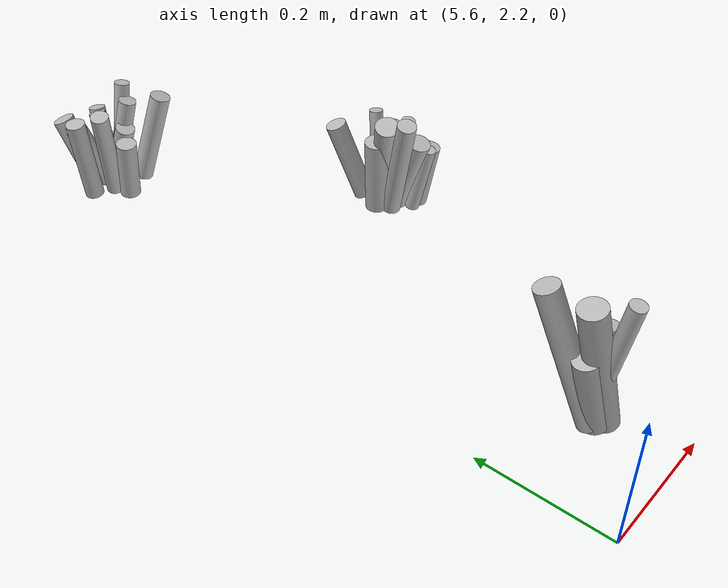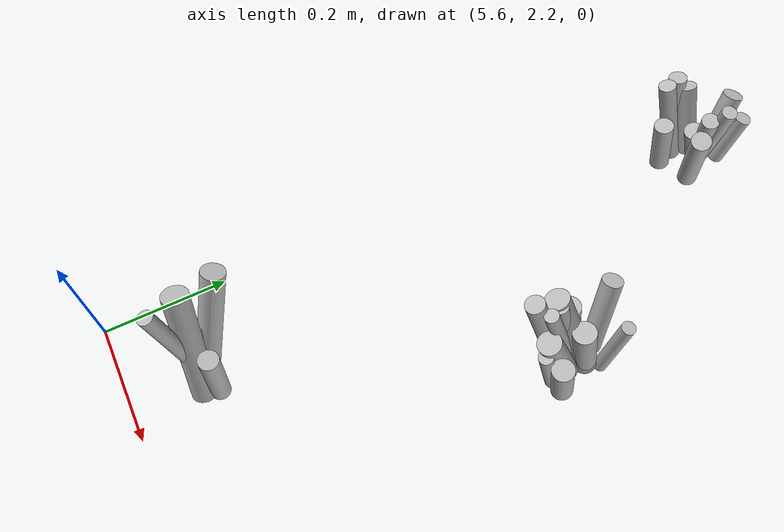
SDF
<sdf version="1.6">
 <world name="default">
  <model name="tussocks">
   <static>true</static>
   <link name="tuft14_2">
    <pose>5.7411 2.3200 0.1001 0 0.2592 2.6650</pose>
    <visual name="tuft14_2_v">
     <geometry><cylinder><radius>0.0198</radius><length>0.2176</length></cylinder></geometry>
     <material>
      <script>
       <uri>model://bushfire/materials/scripts</uri>
       <uri>model://bushfire/materials/textures</uri>
       <name>Bushfire/Tussock</name>
      </script>
     </material>
    </visual>
   </link>
   <link name="tuft14_3">
    <pose>5.7280 2.3554 0.1056 0 0.3630 2.0406</pose>
    <visual name="tuft14_3_v">
     <geometry><cylinder><radius>0.0180</radius><length>0.2295</length></cylinder></geometry>
     <material>
      <script>
       <uri>model://bushfire/materials/scripts</uri>
       <uri>model://bushfire/materials/textures</uri>
       <name>Bushfire/Tussock</name>
      </script>
     </material>
    </visual>
   </link>
   <link name="tuft14_4">
    <pose>5.7809 2.3336 0.0623 0 0.1174 0.4705</pose>
    <visual name="tuft14_4_v">
     <geometry><cylinder><radius>0.0155</radius><length>0.1354</length></cylinder></geometry>
     <material>
      <script>
       <uri>model://bushfire/materials/scripts</uri>
       <uri>model://bushfire/materials/textures</uri>
       <name>Bushfire/Tussock</name>
      </script>
     </material>
    </visual>
   </link>
   <link name="tuft14_5">
    <pose>5.7449 2.3075 0.1059 0 0.1736 4.4198</pose>
    <visual name="tuft14_5_v">
     <geometry><cylinder><radius>0.0118</radius><length>0.2302</length></cylinder></geometry>
     <material>
      <script>
       <uri>model://bushfire/materials/scripts</uri>
       <uri>model://bushfire/materials/textures</uri>
       <name>Bushfire/Tussock</name>
      </script>
     </material>
    </visual>
   </link>
   <link name="tuft14_10">
    <pose>5.7372 2.3224 0.0593 0 0.2665 2.6365</pose>
    <visual name="tuft14_10_v">
     <geometry><cylinder><radius>0.0189</radius><length>0.1290</length></cylinder></geometry>
     <material>
      <script>
       <uri>model://bushfire/materials/scripts</uri>
       <uri>model://bushfire/materials/textures</uri>
       <name>Bushfire/Tussock</name>
      </script>
     </material>
    </visual>
   </link>
   <link name="tuft110_0">
    <pose>5.7527 3.2222 0.0673 0 0.2383 5.4271</pose>
    <visual name="tuft110_0_v">
     <geometry><cylinder><radius>0.0144</radius><length>0.1463</length></cylinder></geometry>
     <material>
      <script>
       <uri>model://bushfire/materials/scripts</uri>
       <uri>model://bushfire/materials/textures</uri>
       <name>Bushfire/Tussock</name>
      </script>
     </material>
    </visual>
   </link>
   <link name="tuft110_1">
    <pose>5.6957 3.2328 0.0595 0 0.3846 3.1448</pose>
    <visual name="tuft110_1_v">
     <geometry><cylinder><radius>0.0169</radius><length>0.1294</length></cylinder></geometry>
     <material>
      <script>
       <uri>model://bushfire/materials/scripts</uri>
       <uri>model://bushfire/materials/textures</uri>
       <name>Bushfire/Tussock</name>
      </script>
     </material>
    </visual>
   </link>
   <link name="tuft110_2">
    <pose>5.7581 3.2811 0.0471 0 0.2186 1.2731</pose>
    <visual name="tuft110_2_v">
     <geometry><cylinder><radius>0.0137</radius><length>0.1024</length></cylinder></geometry>
     <material>
      <script>
       <uri>model://bushfire/materials/scripts</uri>
       <uri>model://bushfire/materials/textures</uri>
       <name>Bushfire/Foliage2</name>
      </script>
     </material>
    </visual>
   </link>
   <link name="tuft110_3">
    <pose>5.7453 3.2558 0.0492 0 0.3368 1.4867</pose>
    <visual name="tuft110_3_v">
     <geometry><cylinder><radius>0.0140</radius><length>0.1069</length></cylinder></geometry>
     <material>
      <script>
       <uri>model://bushfire/materials/scripts</uri>
       <uri>model://bushfire/materials/textures</uri>
       <name>Bushfire/Foliage2</name>
      </script>
     </material>
    </visual>
   </link>
   <link name="tuft110_4">
    <pose>5.7140 3.2982 0.0444 0 0.3822 1.9938</pose>
    <visual name="tuft110_4_v">
     <geometry><cylinder><radius>0.0178</radius><length>0.0966</length></cylinder></geometry>
     <material>
      <script>
       <uri>model://bushfire/materials/scripts</uri>
       <uri>model://bushfire/materials/textures</uri>
       <name>Bushfire/Foliage2</name>
      </script>
     </material>
    </visual>
   </link>
   <link name="tuft110_5">
    <pose>5.7613 3.2322 0.0769 0 0.1660 6.2417</pose>
    <visual name="tuft110_5_v">
     <geometry><cylinder><radius>0.0127</radius><length>0.1671</length></cylinder></geometry>
     <material>
      <script>
       <uri>model://bushfire/materials/scripts</uri>
       <uri>model://bushfire/materials/textures</uri>
       <name>Bushfire/Tussock</name>
      </script>
     </material>
    </visual>
   </link>
   <link name="tuft110_6">
    <pose>5.6705 3.2189 0.0661 0 0.1321 3.3327</pose>
    <visual name="tuft110_6_v">
     <geometry><cylinder><radius>0.0154</radius><length>0.1436</length></cylinder></geometry>
     <material>
      <script>
       <uri>model://bushfire/materials/scripts</uri>
       <uri>model://bushfire/materials/textures</uri>
       <name>Bushfire/Tussock</name>
      </script>
     </material>
    </visual>
   </link>
   <link name="tuft110_7">
    <pose>5.7444 3.2174 0.0481 0 0.3218 4.7830</pose>
    <visual name="tuft110_7_v">
     <geometry><cylinder><radius>0.0160</radius><length>0.1045</length></cylinder></geometry>
     <material>
      <script>
       <uri>model://bushfire/materials/scripts</uri>
       <uri>model://bushfire/materials/textures</uri>
       <name>Bushfire/Foliage2</name>
      </script>
     </material>
    </visual>
   </link>
   <link name="tuft110_8">
    <pose>5.7166 3.1688 0.0471 0 0.1317 4.3180</pose>
    <visual name="tuft110_8_v">
     <geometry><cylinder><radius>0.0166</radius><length>0.1024</length></cylinder></geometry>
     <material>
      <script>
       <uri>model://bushfire/materials/scripts</uri>
       <uri>model://bushfire/materials/textures</uri>
       <name>Bushfire/Tussock</name>
      </script>
     </material>
    </visual>
   </link>
   <link name="tuft110_9">
    <pose>5.7829 3.1818 0.0729 0 0.2880 5.3705</pose>
    <visual name="tuft110_9_v">
     <geometry><cylinder><radius>0.0165</radius><length>0.1584</length></cylinder></geometry>
     <material>
      <script>
       <uri>model://bushfire/materials/scripts</uri>
       <uri>model://bushfire/materials/textures</uri>
       <name>Bushfire/Foliage2</name>
      </script>
     </material>
    </visual>
   </link>
   <link name="tuft110_10">
    <pose>5.6960 3.1906 0.0765 0 0.2545 3.8717</pose>
    <visual name="tuft110_10_v">
     <geometry><cylinder><radius>0.0145</radius><length>0.1662</length></cylinder></geometry>
     <material>
      <script>
       <uri>model://bushfire/materials/scripts</uri>
       <uri>model://bushfire/materials/textures</uri>
       <name>Bushfire/Tussock</name>
      </script>
     </material>
    </visual>
   </link>
   <link name="tuft146_0">
    <pose>5.9537 2.8901 0.0642 0 0.3498 2.2709</pose>
    <visual name="tuft146_0_v">
     <geometry><cylinder><radius>0.0167</radius><length>0.1396</length></cylinder></geometry>
     <material>
      <script>
       <uri>model://bushfire/materials/scripts</uri>
       <uri>model://bushfire/materials/textures</uri>
       <name>Bushfire/Tussock</name>
      </script>
     </material>
    </visual>
   </link>
   <link name="tuft146_1">
    <pose>5.9930 2.7763 0.0552 0 0.2151 4.7660</pose>
    <visual name="tuft146_1_v">
     <geometry><cylinder><radius>0.0117</radius><length>0.1201</length></cylinder></geometry>
     <material>
      <script>
       <uri>model://bushfire/materials/scripts</uri>
       <uri>model://bushfire/materials/textures</uri>
       <name>Bushfire/Foliage2</name>
      </script>
     </material>
    </visual>
   </link>
   <link name="tuft146_2">
    <pose>5.9882 2.8406 0.0559 0 0.1456 4.5867</pose>
    <visual name="tuft146_2_v">
     <geometry><cylinder><radius>0.0184</radius><length>0.1214</length></cylinder></geometry>
     <material>
      <script>
       <uri>model://bushfire/materials/scripts</uri>
       <uri>model://bushfire/materials/textures</uri>
       <name>Bushfire/Foliage2</name>
      </script>
     </material>
    </visual>
   </link>
   <link name="tuft146_3">
    <pose>5.9725 2.8069 0.0839 0 0.2793 4.3260</pose>
    <visual name="tuft146_3_v">
     <geometry><cylinder><radius>0.0112</radius><length>0.1823</length></cylinder></geometry>
     <material>
      <script>
       <uri>model://bushfire/materials/scripts</uri>
       <uri>model://bushfire/materials/textures</uri>
       <name>Bushfire/Tussock</name>
      </script>
     </material>
    </visual>
   </link>
   <link name="tuft146_4">
    <pose>5.9509 2.8321 0.0602 0 0.1132 3.5351</pose>
    <visual name="tuft146_4_v">
     <geometry><cylinder><radius>0.0193</radius><length>0.1308</length></cylinder></geometry>
     <material>
      <script>
       <uri>model://bushfire/materials/scripts</uri>
       <uri>model://bushfire/materials/textures</uri>
       <name>Bushfire/Foliage2</name>
      </script>
     </material>
    </visual>
   </link>
   <link name="tuft146_5">
    <pose>5.9676 2.8216 0.0793 0 0.2489 4.0263</pose>
    <visual name="tuft146_5_v">
     <geometry><cylinder><radius>0.0115</radius><length>0.1725</length></cylinder></geometry>
     <material>
      <script>
       <uri>model://bushfire/materials/scripts</uri>
       <uri>model://bushfire/materials/textures</uri>
       <name>Bushfire/Foliage2</name>
      </script>
     </material>
    </visual>
   </link>
   <link name="tuft146_6">
    <pose>6.0085 2.8775 0.0629 0 0.1491 0.9904</pose>
    <visual name="tuft146_6_v">
     <geometry><cylinder><radius>0.0111</radius><length>0.1367</length></cylinder></geometry>
     <material>
      <script>
       <uri>model://bushfire/materials/scripts</uri>
       <uri>model://bushfire/materials/textures</uri>
       <name>Bushfire/Tussock</name>
      </script>
     </material>
    </visual>
   </link>
   <link name="tuft146_7">
    <pose>6.0147 2.7869 0.0490 0 0.1610 5.1087</pose>
    <visual name="tuft146_7_v">
     <geometry><cylinder><radius>0.0174</radius><length>0.1066</length></cylinder></geometry>
     <material>
      <script>
       <uri>model://bushfire/materials/scripts</uri>
       <uri>model://bushfire/materials/textures</uri>
       <name>Bushfire/Tussock</name>
      </script>
     </material>
    </visual>
   </link>
   <link name="tuft146_8">
    <pose>5.9841 2.7963 0.0625 0 0.3283 4.6153</pose>
    <visual name="tuft146_8_v">
     <geometry><cylinder><radius>0.0186</radius><length>0.1359</length></cylinder></geometry>
     <material>
      <script>
       <uri>model://bushfire/materials/scripts</uri>
       <uri>model://bushfire/materials/textures</uri>
       <name>Bushfire/Foliage2</name>
      </script>
     </material>
    </visual>
   </link>
   <link name="tuft146_9">
    <pose>5.9539 2.7916 0.0873 0 0.2769 4.1531</pose>
    <visual name="tuft146_9_v">
     <geometry><cylinder><radius>0.0153</radius><length>0.1897</length></cylinder></geometry>
     <material>
      <script>
       <uri>model://bushfire/materials/scripts</uri>
       <uri>model://bushfire/materials/textures</uri>
       <name>Bushfire/Foliage2</name>
      </script>
     </material>
    </visual>
   </link>
   <link name="tuft146_10">
    <pose>5.9657 2.8282 0.0808 0 0.3815 3.8414</pose>
    <visual name="tuft146_10_v">
     <geometry><cylinder><radius>0.0193</radius><length>0.1756</length></cylinder></geometry>
     <material>
      <script>
       <uri>model://bushfire/materials/scripts</uri>
       <uri>model://bushfire/materials/textures</uri>
       <name>Bushfire/Foliage2</name>
      </script>
     </material>
    </visual>
   </link>
  </model>
 </world>
</sdf>
